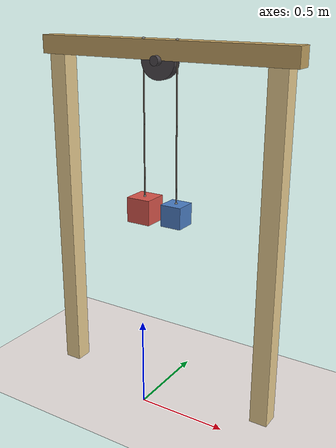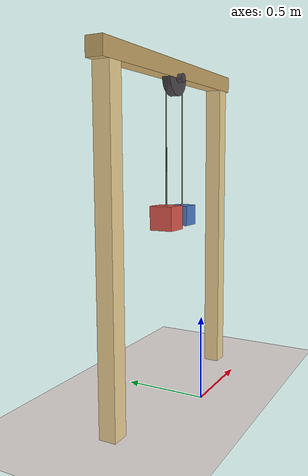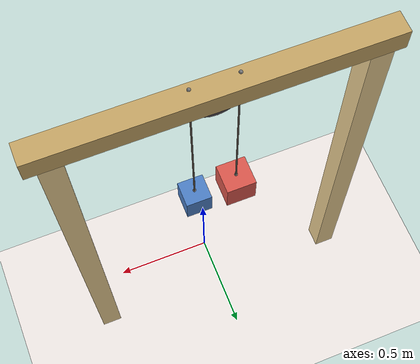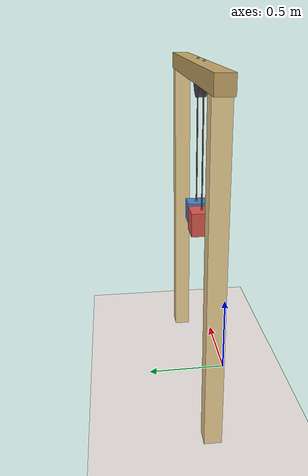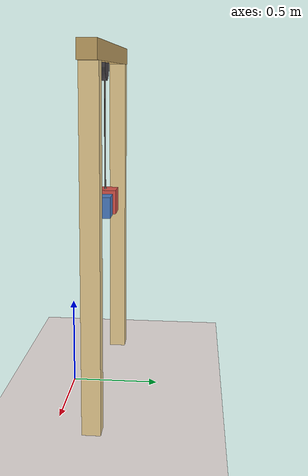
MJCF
<mujoco model="atwood_machine">
  <compiler angle="radian" coordinate="local" autolimits="true"/>
  <option timestep="0.001" gravity="0 0 -9.81" integrator="implicitfast"/>

  <visual>
    <headlight diffuse="0 0 0" ambient="0.50 0.48 0.55" specular="0 0 0"/>
    <rgba haze="0.94 0.91 0.90 1"/>
    <global azimuth="120" elevation="-15" offwidth="1920" offheight="1080" fovy="38"/>
    <quality shadowsize="8192" offsamples="8"/>
    <map shadowclip="6" shadowscale="0.7"/>
  </visual>

  <asset>
    <texture type="skybox" builtin="flat"
             rgb1="0.74 0.68 0.86" rgb2="0.74 0.68 0.86"
             width="512" height="512" mark="none" markrgb="0 0 0"/>

    <material name="floor_mat" rgba="0.94 0.91 0.90 1" specular="0" shininess="0"/>
    <material name="wood" rgba="0.93 0.82 0.58 1" specular="0.1" shininess="0.1"/>
    <material name="wood_dark" rgba="0.78 0.65 0.40 1" specular="0.1" shininess="0.1"/>
    <material name="pulley_mat" rgba="0.30 0.28 0.30 1" specular="0.5" shininess="0.6"/>
    <material name="m_heavy" rgba="0.86 0.34 0.30 1" specular="0.3" shininess="0.4"/>
    <material name="m_light" rgba="0.30 0.50 0.78 1" specular="0.3" shininess="0.4"/>
    <material name="string_mat" rgba="0.30 0.27 0.24 1" specular="0" shininess="0"/>
  </asset>

  <worldbody>
    <light pos="0 0 12" dir="-0.30 0.55 -1" directional="true" castshadow="true"
           diffuse="0.85 0.82 0.78" specular="0.15 0.15 0.15"/>
    <light pos="0 0 8" dir="0.40 -0.30 -1" directional="true" castshadow="false"
           diffuse="0.28 0.28 0.34" specular="0 0 0"/>

    <geom name="floor" type="plane" size="40 40 0.1" material="floor_mat"/>

    <!-- Frame: 2 posts + 1 top crossbeam -->
    <geom type="box" size="0.05 0.05 0.95" pos="-0.65 0.20 0.95" material="wood"/>
    <geom type="box" size="0.05 0.05 0.95" pos=" 0.65 0.20 0.95" material="wood"/>
    <geom type="box" size="0.75 0.05 0.05" pos="0 0.20 1.95" material="wood_dark"/>

    <!-- Pulley wheel (visual): a flat cylinder at the center top. -->
    <geom type="cylinder" size="0.10 0.025" pos="0 0.18 1.90"
          euler="1.5708 0 0" material="pulley_mat"/>
    <geom type="cylinder" size="0.025 0.030" pos="0 0.15 1.90"
          euler="1.5708 0 0" material="pulley_mat"/>

    <!-- Sites where the string leaves the top of the pulley.  Both at
         z = 1.90 + 0.10 = 2.00, at x = ±0.10 (radius offset). -->
    <site name="pulley_L" pos="-0.10 0.18 2.00" size="0.008"/>
    <site name="pulley_R" pos=" 0.10 0.18 2.00" size="0.008"/>

    <!-- Heavy mass (red) on the LEFT.  Slide joint along z.
         Damping is high so motion stays visible across a ~3 s clip rather
         than slamming into the joint limits in under 1 s. -->
    <body name="m_heavy" pos="-0.10 0.18 1.10">
      <joint name="j_heavy" type="slide" axis="0 0 1"
             damping="2.5" range="-0.6 0.5"/>
      <site name="hook_L" pos="0 0 0.07" size="0.008"/>
      <geom type="box" size="0.07 0.07 0.07" mass="0.50" material="m_heavy"/>
    </body>

    <!-- Light mass (blue) on the RIGHT. -->
    <body name="m_light" pos="0.10 0.18 1.10">
      <joint name="j_light" type="slide" axis="0 0 1"
             damping="2.5" range="-0.5 0.6"/>
      <site name="hook_R" pos="0 0 0.06" size="0.008"/>
      <geom type="box" size="0.06 0.06 0.06" mass="0.32" material="m_light"/>
    </body>

    <!-- Camera: pulled back + lifted so both masses stay in frame for their
         full travel (~ z 0.4 to z 1.7). -->
    <camera name="cam" pos="0.2 -3.0 1.55" fovy="42"
            xyaxes="0.997 0.067 0   -0.005 0.083 0.997"/>
  </worldbody>

  <!-- Visual strings: two spatial tendons from each hook to the pulley top -->
  <tendon>
    <spatial name="string_L" width="0.004" rgba="0.30 0.27 0.24 1" limited="false">
      <site site="hook_L"/>
      <site site="pulley_L"/>
    </spatial>
    <spatial name="string_R" width="0.004" rgba="0.30 0.27 0.24 1" limited="false">
      <site site="hook_R"/>
      <site site="pulley_R"/>
    </spatial>
  </tendon>

  <equality>
    <joint joint1="j_heavy" joint2="j_light" polycoef="0 -1 0 0 0"/>
  </equality>
</mujoco>
